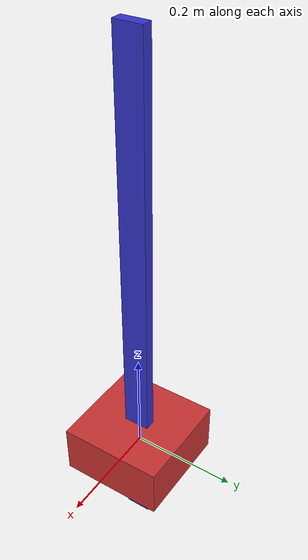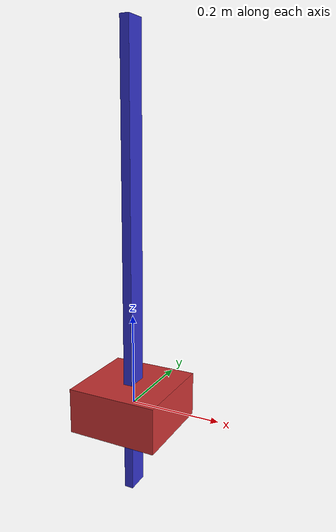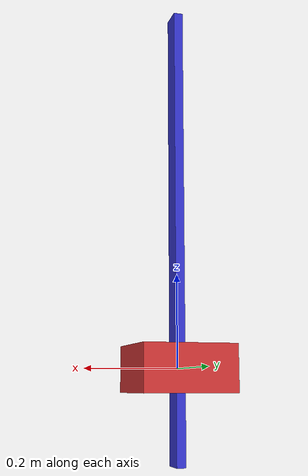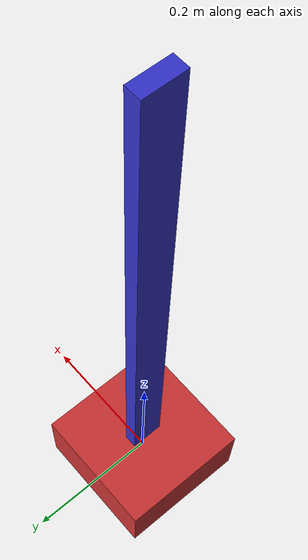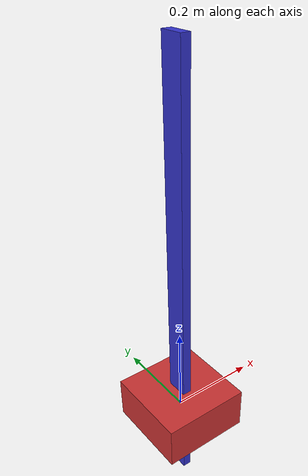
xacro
<?xml version="1.0"?>
<robot name="simple_arm" xmlns:xacro="http://www.ros.org/wiki/xacro">

  <!-- Base link -->
  <link name="base_link">
    <visual>
      <geometry>
        <box size="0.2 0.2 0.1"/>
      </geometry>
      <material name="body_material">
        <color rgba="0.8 0.2 0.2 1"/>
      </material>
    </visual>
    <collision>
      <geometry>
        <box size="0.2 0.2 0.1"/>
      </geometry>
    </collision>
    <inertial>
      <mass value="1.0"/>
      <origin xyz="0 0 0" rpy="0 0 0"/>
      <inertia ixx="0.001" iyy="0.001" izz="0.001" ixy="0" ixz="0" iyz="0"/>
    </inertial>
  </link>

  <!-- Arm link -->
  <link name="arm_link">
    <visual>
      <geometry>
        <box size="0.02 0.05 1"/>
      </geometry>
      <origin xyz="0 0 0.25"/>
      <material name="body_material2">
        <color rgba="0.2 0.2 0.8 1"/>
      </material>
    </visual>
    <collision>
      <geometry>
        <box size="0.02 0.05 1"/>
      </geometry>
      <origin xyz="0 0 0.25"/>
    </collision>
    <inertial>
      <mass value="0.5"/>
      <origin xyz="0 0 0" rpy="0 0 0"/>
      <inertia ixx="0.0001" iyy="0.0001" izz="0.0001" ixy="0" ixz="0" iyz="0"/>
    </inertial>
  </link>

  <!-- Revolute joint -->
  <joint name="shoulder_joint" type="revolute">
    <parent link="base_link"/>
    <child link="arm_link"/>
    <origin xyz="0 0 0.05" rpy="0 0 0"/>
    <axis xyz="0 0 1"/>
    <limit lower="-1.57" upper="1.57" effort="10" velocity="1"/>
  </joint>

  <ros2_control name="RobotController" type="system">
    <hardware>
      <plugin>gz_ros2_control/GazeboSimSystem</plugin>
    </hardware>

    <joint name="shoulder_joint">
      <command_interface name="position">
        <param name="min">-1.57</param>
        <param name="max">1.57</param>
      </command_interface>
      <state_interface name="position"/>
    </joint>
  </ros2_control>

  <gazebo>
      <plugin name="gz_ros2_control::GazeboSimROS2ControlPlugin" filename="libgz_ros2_control-system.so">
          <parameters>$(find simple_arm)/config/shoulder_controller.yaml</parameters>
      </plugin>
  </gazebo>

  <!-- Gazebo-specific tags -->
  <gazebo reference="base_link">
    <mu1>0.2</mu1>
    <mu2>0.2</mu2>
    <material>Gazebo/Red</material>
  </gazebo>

  <gazebo reference="arm_link">
    <mu1>0.2</mu1>
    <mu2>0.2</mu2>
    <material>Gazebo/Blue</material>
  </gazebo>

</robot>
